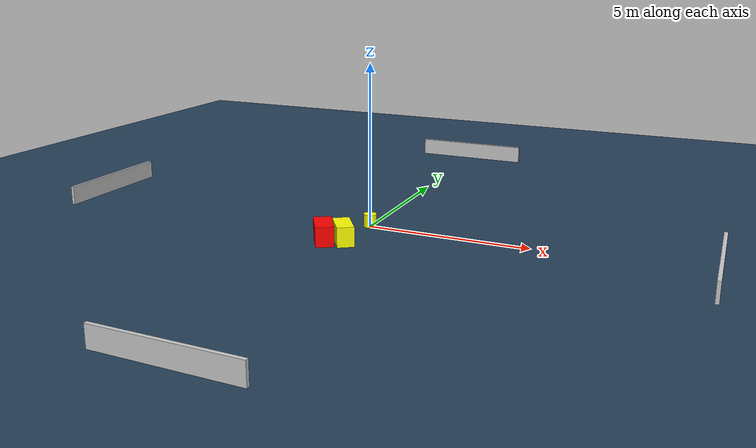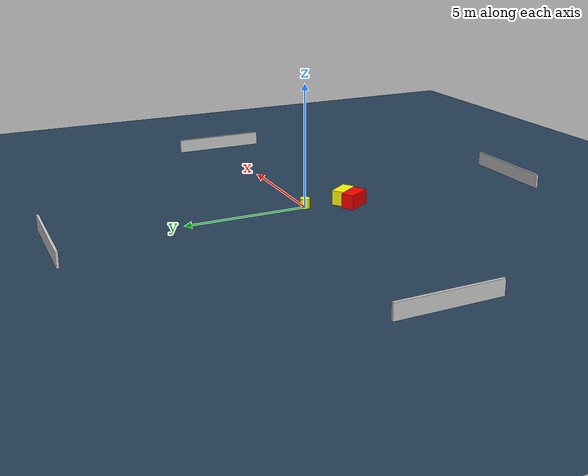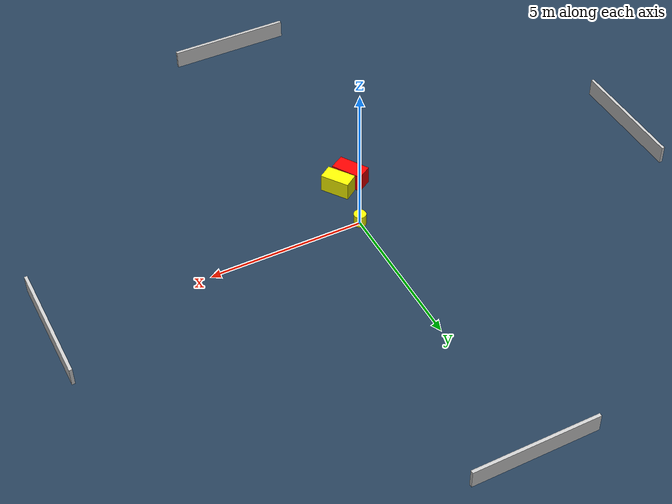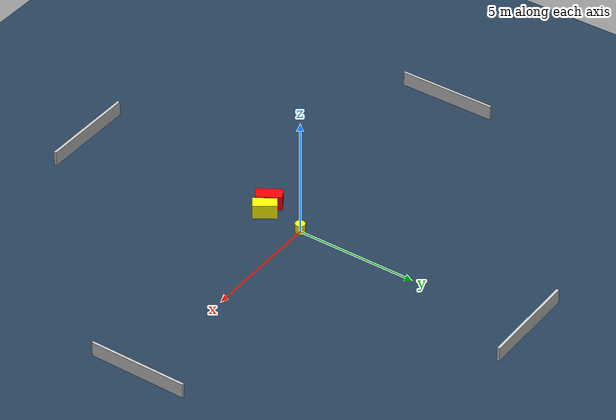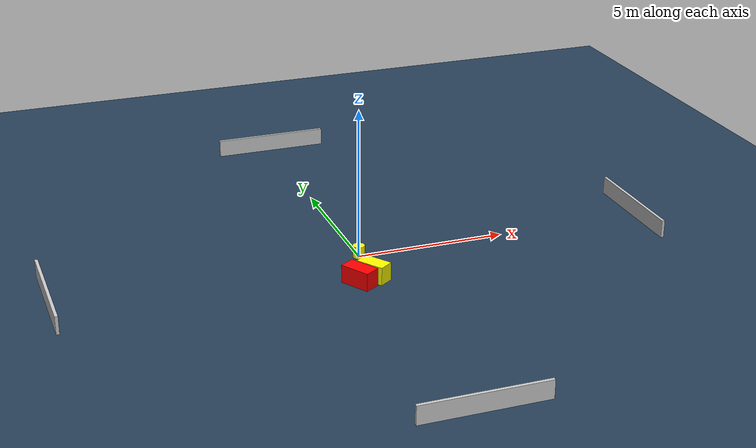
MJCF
<?xml version="1.0" ?>
<mujoco model="generated_environment">
  <option timestep="0.01" integrator="RK4" cone="elliptic"/>
  <default>
    <geom density="1"/>
  </default>
  <asset>
    <texture builtin="gradient" height="3072" name="skybox" rgb1="0.3 0.5 0.7" rgb2="0 0 0" type="skybox" width="512"/>
    <texture builtin="checker" height="300" name="groundplane" rgb1="0.2 0.3 0.4" rgb2="0.1 0.2 0.3" type="2d" width="300"/>
    <material name="groundplane" reflectance="0.2" texrepeat="5 5" texture="groundplane"/>
  </asset>
  <worldbody>
    <light dir="0 0 -1" directional="true" pos="0 0 1.5"/>
    <geom condim="3" friction="0.5 0.005 0.001" material="groundplane" name="floor" pos="0 0 0" size="0 0 0.05" type="plane"/>
    <body name="walls">
      <geom name="wall_1" condim="4" pos="-10.0 0.0 0.3" rgba="0.800000011920929 0.800000011920929 0.800000011920929 1.0" size="0.05 2.0 0.3" type="box"/>
      <geom name="wall_2" condim="4" pos="10.0 0.0 0.3" rgba="0.800000011920929 0.800000011920929 0.800000011920929 1.0" size="0.05 2.0 0.3" type="box"/>
      <geom name="wall_3" condim="4" pos="0.0 -10.0 0.3" rgba="0.800000011920929 0.800000011920929 0.800000011920929 1.0" size="2.0 0.05 0.3" type="box"/>
      <geom name="wall_4" condim="4" pos="0.0 10.0 0.3" rgba="0.800000011920929 0.800000011920929 0.800000011920929 1.0" size="2.0 0.05 0.3" type="box"/>
    </body>
    <body name="robot">
      <joint name="joint_x" type="slide" pos="0 0 0" axis="1 0 0"/>
      <joint name="joint_y" type="slide" pos="0 0 0" axis="0 1 0"/>
      <geom name="robot" type="cylinder" pos="0.0 0.0 0.2" size="0.2 0.2 0.0" mass="5.0" friction="1.0 0.005 0.0001" condim="4" rgba="1.0 1.0 0.0 1.0"/>
    </body>
    <body name="obstacle_1_movable">
      <geom name="obstacle_1_movable" condim="4" pos="-0.09299902832533277 -1.6725890975292852 0.3" euler="0 0 34.94393933556691" friction="0.0 0.005 0.001" rgba="1.0 1.0 0.0 1.0" size="0.2539956673484494 0.4761494501861482 0.3" type="box" mass="0.1"/>
      <joint type="free"/>
    </body>
    <body name="obstacle_2_static">
      <geom name="obstacle_2_static" condim="4" pos="-0.6338773839478196 -1.8660941738903472 0.3" euler="0 0 121.37628151685682" friction="0.0 0.005 0.001" rgba="1.0 0.0 0.0 1.0" size="0.5160965980444863 0.2679626941133484 0.3" type="box"/>
    </body>
  </worldbody>
  <actuator>
    <motor name="actuator_x" joint="joint_x" gear="1" ctrlrange="-1 1"/>
    <motor name="actuator_y" joint="joint_y" gear="1" ctrlrange="-1 1"/>
  </actuator>
</mujoco>
